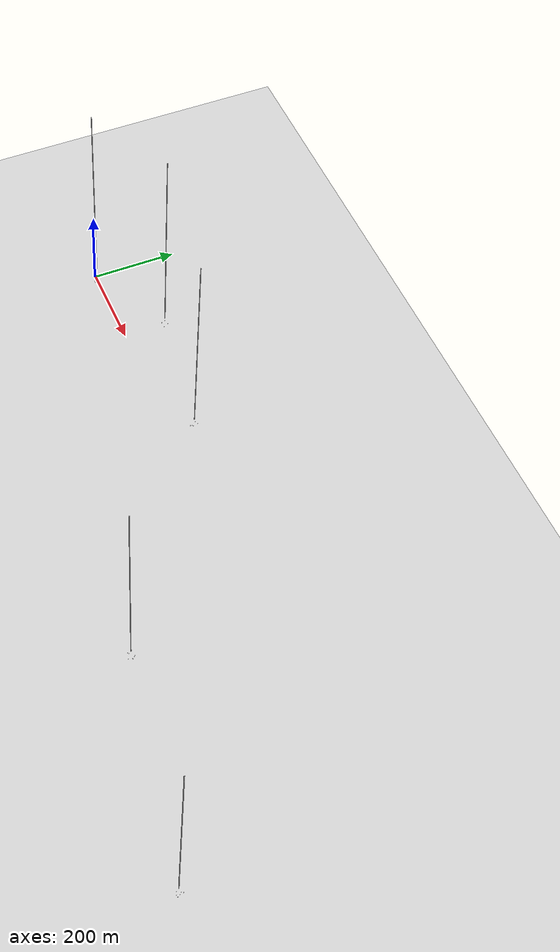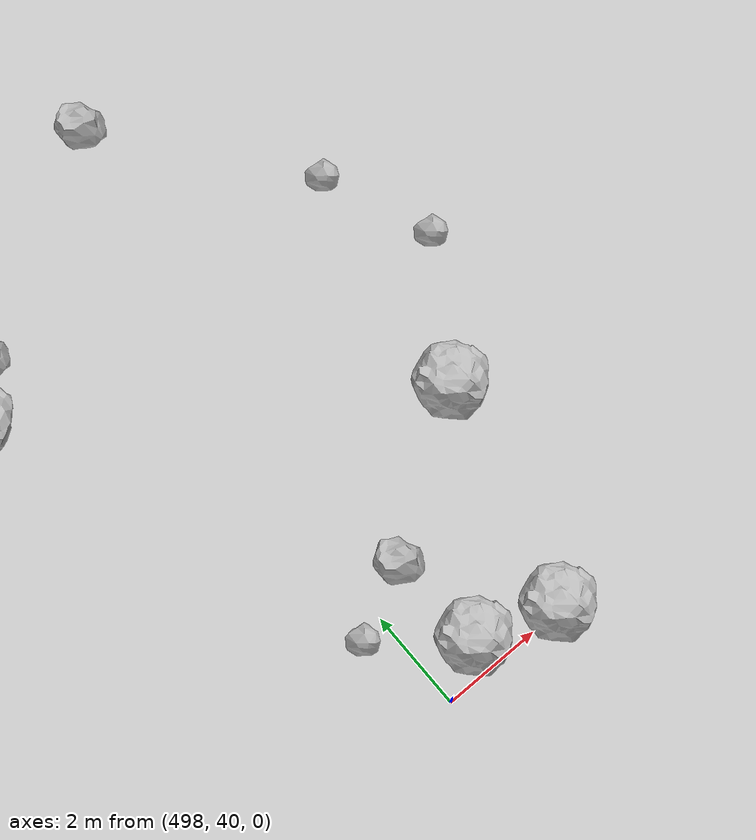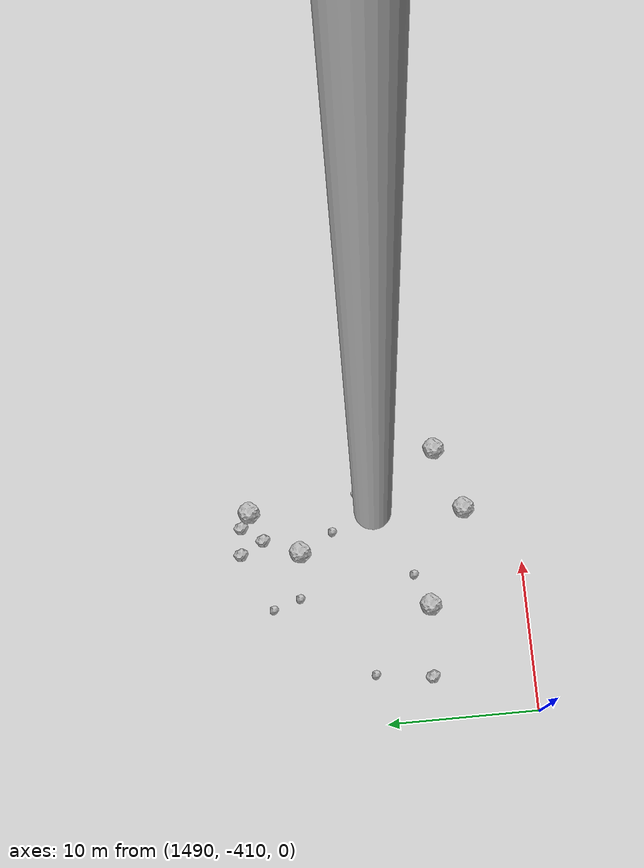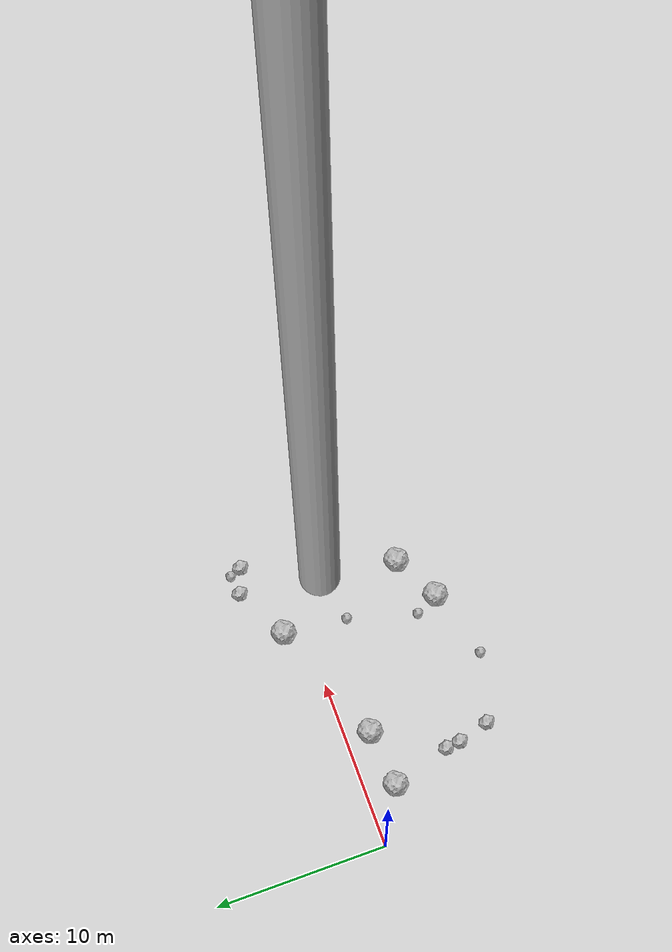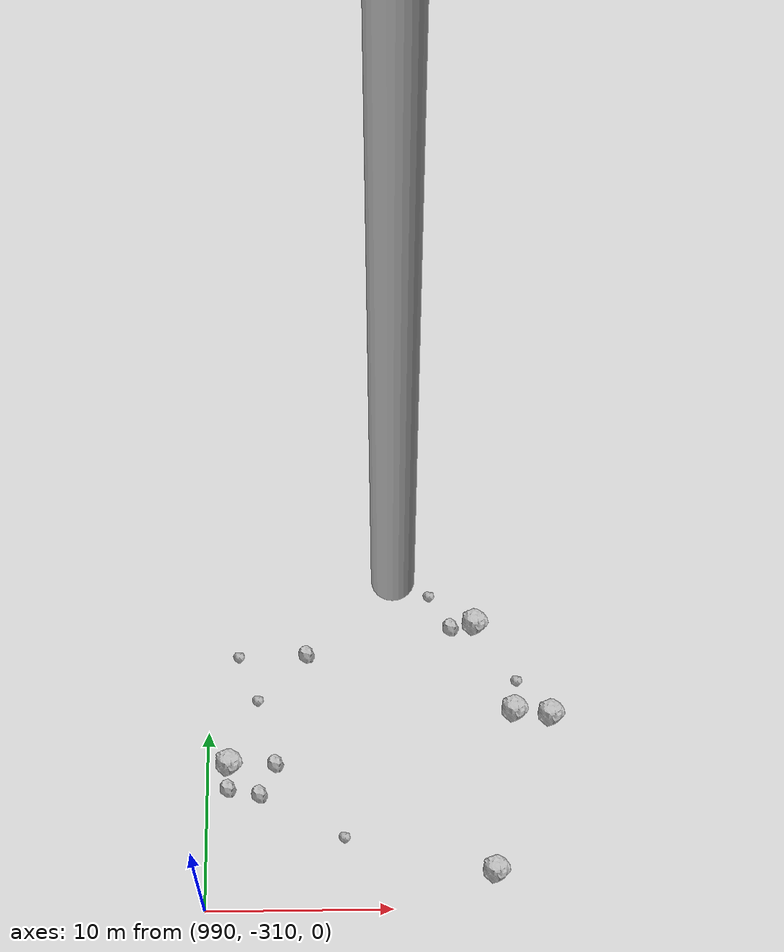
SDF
<?xml version="1.0" ?>
<sdf version="1.6">
  <world name="default">

    <include>
      <uri>model://custom_ground</uri>
    </include>

    <include>
      <uri>model://sun</uri>
    </include>

    <spherical_coordinates>
      <surface_model>EARTH_WGS84</surface_model>
      <latitude_deg>38.161479</latitude_deg>
      <longitude_deg>-122.454630</longitude_deg>
      <elevation>488.0</elevation>
      <heading_deg>90</heading_deg>
    </spherical_coordinates>

    <model name="rock1_0_0">
      <include>
        <uri>model://rock1</uri>
        <pose>3.1172444847581726 -1.7196052483482696 0.5 0 0 0</pose>
      </include>
    </model>
    <model name="rock1_0_1">
      <include>
        <uri>model://rock1</uri>
        <pose>12.856954743472425 -7.796452630825714 0.5 0 0 0</pose>
      </include>
    </model>
    <model name="rock1_0_2">
      <include>
        <uri>model://rock1</uri>
        <pose>6.478249514775396 -1.4122256213902151 0.5 0 0 0</pose>
      </include>
    </model>
    <model name="rock1_0_3">
      <include>
        <uri>model://rock1</uri>
        <pose>15.61716565507523 -6.394153490713812 0.5 0 0 0</pose>
      </include>
    </model>
    <model name="rock1_0_4">
      <include>
        <uri>model://rock1</uri>
        <pose>13.696890479441935 1.2596274580669622 0.5 0 0 0</pose>
      </include>
    </model>
    <model name="rock2_0_0">
      <include>
        <uri>model://rock2</uri>
        <pose>4.105315818060255 -5.182543872561897 0.3 0 0 0</pose>
      </include>
    </model>
    <model name="rock2_0_1">
      <include>
        <uri>model://rock2</uri>
        <pose>18.323793740617216 2.309248317548036 0.3 0 0 0</pose>
      </include>
    </model>
    <model name="rock2_0_2">
      <include>
        <uri>model://rock2</uri>
        <pose>16.831540656734926 2.8628778994743715 0.3 0 0 0</pose>
      </include>
    </model>
    <model name="rock2_0_3">
      <include>
        <uri>model://rock2</uri>
        <pose>4.200070015536809 -6.02909736211708 0.3 0 0 0</pose>
      </include>
    </model>
    <model name="rock2_0_4">
      <include>
        <uri>model://rock2</uri>
        <pose>4.710889674170417 -7.864615978344038 0.3 0 0 0</pose>
      </include>
    </model>
    <model name="rock3_0_0">
      <include>
        <uri>model://rock3</uri>
        <pose>18.01497391468752 2.979683238928807 0.2 0 0 0</pose>
      </include>
    </model>
    <model name="rock3_0_1">
      <include>
        <uri>model://rock3</uri>
        <pose>18.701659691040952 -3.123697050496177 0.2 0 0 0</pose>
      </include>
    </model>
    <model name="rock3_0_2">
      <include>
        <uri>model://rock3</uri>
        <pose>8.702288951197064 -9.05935564101669 0.2 0 0 0</pose>
      </include>
    </model>
    <model name="rock3_0_3">
      <include>
        <uri>model://rock3</uri>
        <pose>13.275862727117998 -2.5111282337130536 0.2 0 0 0</pose>
      </include>
    </model>
    <model name="rock3_0_4">
      <include>
        <uri>model://rock3</uri>
        <pose>12.149242369114855 -6.506327312781293 0.2 0 0 0</pose>
      </include>
    </model>
    <model name="rock1_1_0">
      <include>
        <uri>model://rock1</uri>
        <pose>193.86375393362627 95.08538041315805 0.5 0 0 0</pose>
      </include>
    </model>
    <model name="rock1_1_1">
      <include>
        <uri>model://rock1</uri>
        <pose>202.49975243102253 107.39957442276243 0.5 0 0 0</pose>
      </include>
    </model>
    <model name="rock1_1_2">
      <include>
        <uri>model://rock1</uri>
        <pose>207.02636661131407 95.49629981691056 0.5 0 0 0</pose>
      </include>
    </model>
    <model name="rock1_1_3">
      <include>
        <uri>model://rock1</uri>
        <pose>195.1814879410068 106.00844947708794 0.5 0 0 0</pose>
      </include>
    </model>
    <model name="rock1_1_4">
      <include>
        <uri>model://rock1</uri>
        <pose>194.93747222333346 94.24320498552953 0.5 0 0 0</pose>
      </include>
    </model>
    <model name="rock2_1_0">
      <include>
        <uri>model://rock2</uri>
        <pose>199.44647452363787 108.8438862415681 0.3 0 0 0</pose>
      </include>
    </model>
    <model name="rock2_1_1">
      <include>
        <uri>model://rock2</uri>
        <pose>190.99158244805628 103.87765303979828 0.3 0 0 0</pose>
      </include>
    </model>
    <model name="rock2_1_2">
      <include>
        <uri>model://rock2</uri>
        <pose>191.85084008868097 99.9582440543311 0.3 0 0 0</pose>
      </include>
    </model>
    <model name="rock2_1_3">
      <include>
        <uri>model://rock2</uri>
        <pose>190.19174822322483 100.95002892995163 0.3 0 0 0</pose>
      </include>
    </model>
    <model name="rock2_1_4">
      <include>
        <uri>model://rock2</uri>
        <pose>201.4176164573841 107.31540177444305 0.3 0 0 0</pose>
      </include>
    </model>
    <model name="rock3_1_0">
      <include>
        <uri>model://rock3</uri>
        <pose>196.36960863673852 103.71930869480127 0.2 0 0 0</pose>
      </include>
    </model>
    <model name="rock3_1_1">
      <include>
        <uri>model://rock3</uri>
        <pose>199.47810811380353 94.2604230125758 0.2 0 0 0</pose>
      </include>
    </model>
    <model name="rock3_1_2">
      <include>
        <uri>model://rock3</uri>
        <pose>196.0095622041842 97.78179221165934 0.2 0 0 0</pose>
      </include>
    </model>
    <model name="rock3_1_3">
      <include>
        <uri>model://rock3</uri>
        <pose>194.96143756017986 93.11754885240808 0.2 0 0 0</pose>
      </include>
    </model>
    <model name="rock3_1_4">
      <include>
        <uri>model://rock3</uri>
        <pose>196.79867876124354 102.40314740407784 0.2 0 0 0</pose>
      </include>
    </model>
    <model name="rock1_2_0">
      <include>
        <uri>model://rock1</uri>
        <pose>494.681120091144 49.6327620683558 0.5 0 0 0</pose>
      </include>
    </model>
    <model name="rock1_2_1">
      <include>
        <uri>model://rock1</uri>
        <pose>499.13481136901186 40.62543045508716 0.5 0 0 0</pose>
      </include>
    </model>
    <model name="rock1_2_2">
      <include>
        <uri>model://rock1</uri>
        <pose>501.8935602124118 44.515298209088726 0.5 0 0 0</pose>
      </include>
    </model>
    <model name="rock1_2_3">
      <include>
        <uri>model://rock1</uri>
        <pose>500.7147768402966 40.10483237400809 0.5 0 0 0</pose>
      </include>
    </model>
    <model name="rock1_2_4">
      <include>
        <uri>model://rock1</uri>
        <pose>501.49069871869955 57.98861330274622 0.5 0 0 0</pose>
      </include>
    </model>
    <model name="rock2_2_0">
      <include>
        <uri>model://rock2</uri>
        <pose>495.50666829903025 50.557136647290875 0.3 0 0 0</pose>
      </include>
    </model>
    <model name="rock2_2_1">
      <include>
        <uri>model://rock2</uri>
        <pose>496.39062638442357 58.18306419831164 0.3 0 0 0</pose>
      </include>
    </model>
    <model name="rock2_2_2">
      <include>
        <uri>model://rock2</uri>
        <pose>498.9455957805111 42.600713779350095 0.3 0 0 0</pose>
      </include>
    </model>
    <model name="rock2_2_3">
      <include>
        <uri>model://rock2</uri>
        <pose>494.2795531678518 55.28684885190522 0.3 0 0 0</pose>
      </include>
    </model>
    <model name="rock2_2_4">
      <include>
        <uri>model://rock2</uri>
        <pose>499.6859824682619 52.82486714463893 0.3 0 0 0</pose>
      </include>
    </model>
    <model name="rock3_2_0">
      <include>
        <uri>model://rock3</uri>
        <pose>497.48481285264495 41.88080749211388 0.2 0 0 0</pose>
      </include>
    </model>
    <model name="rock3_2_1">
      <include>
        <uri>model://rock3</uri>
        <pose>497.30092112421545 57.57184691829117 0.2 0 0 0</pose>
      </include>
    </model>
    <model name="rock3_2_2">
      <include>
        <uri>model://rock3</uri>
        <pose>502.55872826692496 49.09727220201489 0.2 0 0 0</pose>
      </include>
    </model>
    <model name="rock3_2_3">
      <include>
        <uri>model://rock3</uri>
        <pose>504.74061771664225 56.88037957334936 0.2 0 0 0</pose>
      </include>
    </model>
    <model name="rock3_2_4">
      <include>
        <uri>model://rock3</uri>
        <pose>503.43707264219904 46.9523265546934 0.2 0 0 0</pose>
      </include>
    </model>
    <model name="rock1_3_0">
      <include>
        <uri>model://rock1</uri>
        <pose>991.1463712900378 -301.83805503966585 0.5 0 0 0</pose>
      </include>
    </model>
    <model name="rock1_3_1">
      <include>
        <uri>model://rock1</uri>
        <pose>1005.4971276685316 -307.97779680627315 0.5 0 0 0</pose>
      </include>
    </model>
    <model name="rock1_3_2">
      <include>
        <uri>model://rock1</uri>
        <pose>1004.7228267745184 -293.6919063422118 0.5 0 0 0</pose>
      </include>
    </model>
    <model name="rock1_3_3">
      <include>
        <uri>model://rock1</uri>
        <pose>1006.7774196030952 -298.8690003590692 0.5 0 0 0</pose>
      </include>
    </model>
    <model name="rock1_3_4">
      <include>
        <uri>model://rock1</uri>
        <pose>1008.7661201142762 -299.1343206307787 0.5 0 0 0</pose>
      </include>
    </model>
    <model name="rock2_3_0">
      <include>
        <uri>model://rock2</uri>
        <pose>995.3195359484805 -295.440068135167 0.3 0 0 0</pose>
      </include>
    </model>
    <model name="rock2_3_1">
      <include>
        <uri>model://rock2</uri>
        <pose>993.6575740961727 -301.84146446769495 0.3 0 0 0</pose>
      </include>
    </model>
    <model name="rock2_3_2">
      <include>
        <uri>model://rock2</uri>
        <pose>1003.3485885851472 -293.88641549767635 0.3 0 0 0</pose>
      </include>
    </model>
    <model name="rock2_3_3">
      <include>
        <uri>model://rock2</uri>
        <pose>991.0989514974762 -303.23487434147575 0.3 0 0 0</pose>
      </include>
    </model>
    <model name="rock2_3_4">
      <include>
        <uri>model://rock2</uri>
        <pose>992.8118435426871 -303.5781545170335 0.3 0 0 0</pose>
      </include>
    </model>
    <model name="rock3_3_0">
      <include>
        <uri>model://rock3</uri>
        <pose>1002.1527824110195 -291.98976306850113 0.2 0 0 0</pose>
      </include>
    </model>
    <model name="rock3_3_1">
      <include>
        <uri>model://rock3</uri>
        <pose>991.553029122028 -295.57414351065813 0.2 0 0 0</pose>
      </include>
    </model>
    <model name="rock3_3_2">
      <include>
        <uri>model://rock3</uri>
        <pose>1006.9152417986875 -297.14307371719946 0.2 0 0 0</pose>
      </include>
    </model>
    <model name="rock3_3_3">
      <include>
        <uri>model://rock3</uri>
        <pose>997.392424070416 -306.05777617753904 0.2 0 0 0</pose>
      </include>
    </model>
    <model name="rock3_3_4">
      <include>
        <uri>model://rock3</uri>
        <pose>992.6415170566188 -298.1711720787065 0.2 0 0 0</pose>
      </include>
    </model>
    <model name="rock1_4_0">
      <include>
        <uri>model://rock1</uri>
        <pose>1497.6526684062808 -403.5776003020407 0.5 0 0 0</pose>
      </include>
    </model>
    <model name="rock1_4_1">
      <include>
        <uri>model://rock1</uri>
        <pose>1505.004513276966 -391.938315592484 0.5 0 0 0</pose>
      </include>
    </model>
    <model name="rock1_4_2">
      <include>
        <uri>model://rock1</uri>
        <pose>1504.0473894830561 -406.41280456152884 0.5 0 0 0</pose>
      </include>
    </model>
    <model name="rock1_4_3">
      <include>
        <uri>model://rock1</uri>
        <pose>1508.3441504561977 -404.80510061973433 0.5 0 0 0</pose>
      </include>
    </model>
    <model name="rock1_4_4">
      <include>
        <uri>model://rock1</uri>
        <pose>1501.9812705257145 -395.18115245981875 0.5 0 0 0</pose>
      </include>
    </model>
    <model name="rock2_4_0">
      <include>
        <uri>model://rock2</uri>
        <pose>1502.1771957995156 -391.19247222377373 0.3 0 0 0</pose>
      </include>
    </model>
    <model name="rock2_4_1">
      <include>
        <uri>model://rock2</uri>
        <pose>1503.0186410904407 -392.73722539083604 0.3 0 0 0</pose>
      </include>
    </model>
    <model name="rock2_4_2">
      <include>
        <uri>model://rock2</uri>
        <pose>1504.003128671796 -391.3253914105085 0.3 0 0 0</pose>
      </include>
    </model>
    <model name="rock2_4_3">
      <include>
        <uri>model://rock2</uri>
        <pose>1505.7041902675405 -399.3918124231065 0.3 0 0 0</pose>
      </include>
    </model>
    <model name="rock2_4_4">
      <include>
        <uri>model://rock2</uri>
        <pose>1492.8877376902249 -403.2580377615705 0.3 0 0 0</pose>
      </include>
    </model>
    <model name="rock3_4_0">
      <include>
        <uri>model://rock3</uri>
        <pose>1498.2229986308048 -393.1491238070664 0.2 0 0 0</pose>
      </include>
    </model>
    <model name="rock3_4_1">
      <include>
        <uri>model://rock3</uri>
        <pose>1499.7819907161158 -402.6921486480608 0.2 0 0 0</pose>
      </include>
    </model>
    <model name="rock3_4_2">
      <include>
        <uri>model://rock3</uri>
        <pose>1503.1829350162172 -397.4532944751202 0.2 0 0 0</pose>
      </include>
    </model>
    <model name="rock3_4_3">
      <include>
        <uri>model://rock3</uri>
        <pose>1493.312415272349 -399.548795293955 0.2 0 0 0</pose>
      </include>
    </model>
    <model name="rock3_4_4">
      <include>
        <uri>model://rock3</uri>
        <pose>1498.8233855071614 -394.96493259537664 0.2 0 0 0</pose>
      </include>
    </model>

    <model name="cylinder_1">
      <static>true</static>
      <link name="link">
        <visual name="visual">
          <geometry>
            <cylinder>
              <radius>1</radius>
              <length>500</length>
            </cylinder>
          </geometry>
        </visual>
      </link>
      <pose>10 0 270 0 0 0</pose>
    </model>

    <model name="cylinder_2">
      <static>true</static>
      <link name="link">
        <visual name="visual">
          <geometry>
            <cylinder>
              <radius>1</radius>
              <length>500</length>
            </cylinder>
          </geometry>
        </visual>
      </link>
      <pose>200 100 270 0 0 0</pose>
    </model>

    <model name="cylinder_3">
      <static>true</static>
      <link name="link">
        <visual name="visual">
          <geometry>
            <cylinder>
              <radius>1</radius>
              <length>500</length>
            </cylinder>
          </geometry>
        </visual>
      </link>
      <pose>500 50 270 0 0 0</pose>
    </model>

    <model name="cylinder_4">
      <static>true</static>
      <link name="link">
        <visual name="visual">
          <geometry>
            <cylinder>
              <radius>1</radius>
              <length>500</length>
            </cylinder>
          </geometry>
        </visual>
      </link>
      <pose>1000 -300 270 0 0 0</pose>
    </model>

    <model name="cylinder_5">
      <static>true</static>
      <link name="link">
        <visual name="visual">
          <geometry>
            <cylinder>
              <radius>1</radius>
              <length>500</length>
            </cylinder>
          </geometry>
        </visual>
      </link>
      <pose>1500 -400 270 0 0 0</pose>
    </model>

  </world>
</sdf>

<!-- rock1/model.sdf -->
<sdf version="1.6">
  <model name="rock1">
    <static>true</static> <!-- Set to true if the model should not move -->
    <pose>0 0 0 0 0 0</pose>

    <!--z offset is 0.5 for full scale-->

    <link name="link">
      <collision name="rock1_collision">
        <geometry>
          <mesh>
            <uri>model://meshes/rock1.dae</uri>
          </mesh>
        </geometry>
      </collision>
      <visual name="rock1_visual">
        <geometry>
          <mesh>
            <uri>model://meshes/rock1.dae</uri>
          </mesh>
        </geometry>
        <material>
          <script>
            <uri>model://materials/scripts/sand_pebbles.material</uri>
            <name>custom_ground/Image</name>
          </script>
        </material>
      </visual>
    </link>
  </model>
</sdf>

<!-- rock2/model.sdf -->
<sdf version="1.6">
  <model name="rock2">
    <static>true</static> <!-- Set to true if the model should not move -->
    <pose>0 0 0 0 0 0</pose>

    <!--z offset is 0.3 for full scale-->

    <link name="link">
      <collision name="rock2_collision">
        <geometry>
          <mesh>
            <uri>model://meshes/rock2.dae</uri>
          </mesh>
        </geometry>
      </collision>
      <visual name="rock2_visual">
        <geometry>
          <mesh>
            <uri>model://meshes/rock2.dae</uri>
          </mesh>
        </geometry>
        <material>
          <script>
            <uri>model://materials/scripts/sand_pebbles.material</uri>
            <name>custom_ground/Image</name>
          </script>
        </material>
      </visual>
    </link>
  </model>
</sdf>

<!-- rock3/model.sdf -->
<sdf version="1.6">
  <model name="rock3">
    <static>true</static> <!-- Set to true if the model should not move -->
    <pose>0 0 0 0 0 0</pose>

    <!--z offset is 0.2 for full scale-->

    <link name="link">
      <collision name="rock3_collision">
        <geometry>
          <mesh>
            <uri>model://meshes/rock3.dae</uri>
          </mesh>
        </geometry>
      </collision>
      <visual name="rock3_visual">
        <geometry>
          <mesh>
            <uri>model://meshes/rock3.dae</uri>
          </mesh>
        </geometry>
        <material>
          <script>
            <uri>model://materials/scripts/sand_pebbles.material</uri>
            <name>custom_ground/Image</name>
          </script>
        </material>
      </visual>
    </link>
  </model>
</sdf>

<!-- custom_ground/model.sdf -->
<sdf version="1.6">
  <model name="custom_ground">
    <static>true</static> <!-- Ground is static and immovable -->
    <link name="ground_link">
      <pose>240 0 0 0 0 0</pose> <!-- Position and orientation relative to the world -->
      <!-- Visual Representation -->
      <visual name="ground_visual">
        <geometry>
          <plane>
            <normal>0 0 1</normal> <!-- Upward facing plane -->
            <size>500 500</size> <!-- Size of the plane -->
          </plane>
        </geometry>
        <material>
          <script>
            <uri>model://materials/scripts/sand_pebbles.material</uri>
            <name>custom_ground/Image</name>
          </script>
        </material>
      </visual>

      <!-- Collision Representation -->
      <collision name="ground_collision">
        <geometry>
          <plane>
            <normal>0 0 1</normal>
            <size>100 100</size>
          </plane>
        </geometry>
      </collision>

    </link>
  </model>
</sdf>
